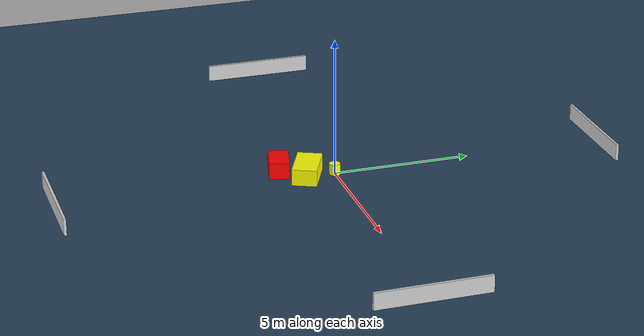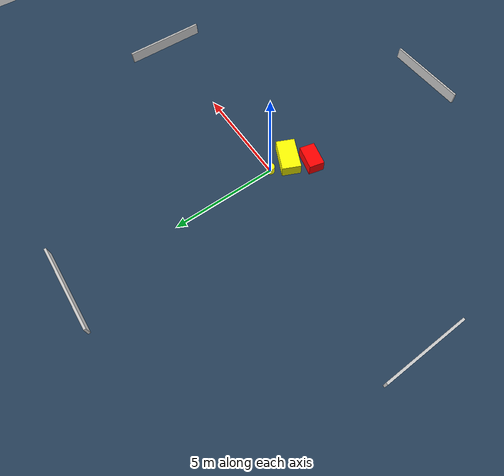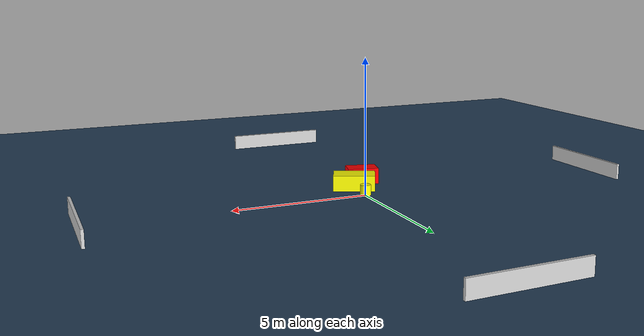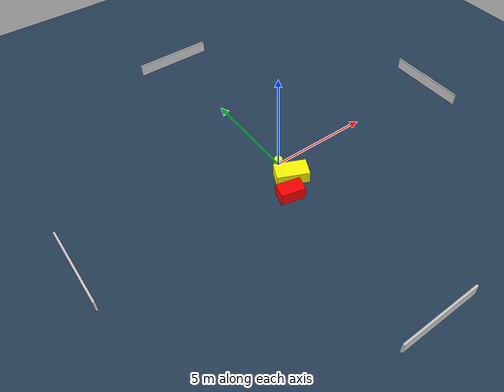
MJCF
<?xml version="1.0" ?>
<mujoco model="generated_environment">
  <option timestep="0.01" integrator="RK4" cone="elliptic"/>
  <default>
    <geom density="1"/>
  </default>
  <asset>
    <texture builtin="gradient" height="3072" name="skybox" rgb1="0.3 0.5 0.7" rgb2="0 0 0" type="skybox" width="512"/>
    <texture builtin="checker" height="300" name="groundplane" rgb1="0.2 0.3 0.4" rgb2="0.1 0.2 0.3" type="2d" width="300"/>
    <material name="groundplane" reflectance="0.2" texrepeat="5 5" texture="groundplane"/>
  </asset>
  <worldbody>
    <light dir="0 0 -1" directional="true" pos="0 0 1.5"/>
    <geom condim="3" friction="0.5 0.005 0.001" material="groundplane" name="floor" pos="0 0 0" size="0 0 0.05" type="plane"/>
    <body name="walls">
      <geom name="wall_1" condim="4" pos="-10.0 0.0 0.3" rgba="0.800000011920929 0.800000011920929 0.800000011920929 1.0" size="0.05 2.0 0.3" type="box"/>
      <geom name="wall_2" condim="4" pos="10.0 0.0 0.3" rgba="0.800000011920929 0.800000011920929 0.800000011920929 1.0" size="0.05 2.0 0.3" type="box"/>
      <geom name="wall_3" condim="4" pos="0.0 -10.0 0.3" rgba="0.800000011920929 0.800000011920929 0.800000011920929 1.0" size="2.0 0.05 0.3" type="box"/>
      <geom name="wall_4" condim="4" pos="0.0 10.0 0.3" rgba="0.800000011920929 0.800000011920929 0.800000011920929 1.0" size="2.0 0.05 0.3" type="box"/>
    </body>
    <body name="robot">
      <joint name="joint_x" type="slide" pos="0 0 0" axis="1 0 0"/>
      <joint name="joint_y" type="slide" pos="0 0 0" axis="0 1 0"/>
      <geom name="robot" type="cylinder" pos="0.0 0.0 0.2" size="0.2 0.2 0.0" mass="5.0" friction="1.0 0.005 0.0001" condim="4" rgba="1.0 1.0 0.0 1.0"/>
    </body>
    <body name="obstacle_1_movable">
      <geom name="obstacle_1_movable" condim="4" pos="-0.011390678257322888 -1.0146575963455244 0.3" euler="0 0 335.379341392267" friction="0.0 0.005 0.001" rgba="1.0 1.0 0.0 1.0" size="0.775278107200158 0.4470215657771105 0.3" type="box" mass="0.1"/>
      <joint type="free"/>
    </body>
    <body name="obstacle_2_static">
      <geom name="obstacle_2_static" condim="4" pos="-0.7068605313902501 -1.8566701376366028 0.3" euler="0 0 166.4603287317617" friction="0.0 0.005 0.001" rgba="1.0 0.0 0.0 1.0" size="0.5841510047302598 0.3636416806514279 0.3" type="box"/>
    </body>
  </worldbody>
  <actuator>
    <motor name="actuator_x" joint="joint_x" gear="1" ctrlrange="-1 1"/>
    <motor name="actuator_y" joint="joint_y" gear="1" ctrlrange="-1 1"/>
  </actuator>
</mujoco>
